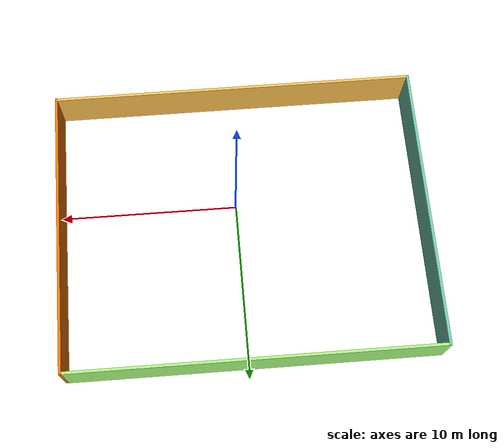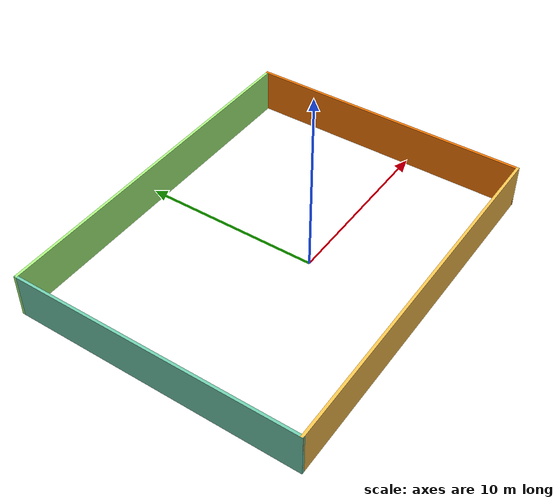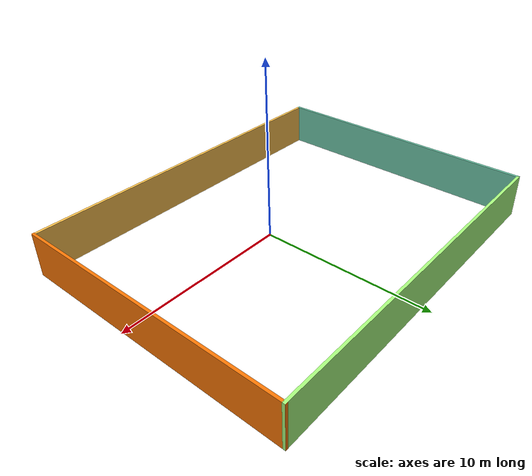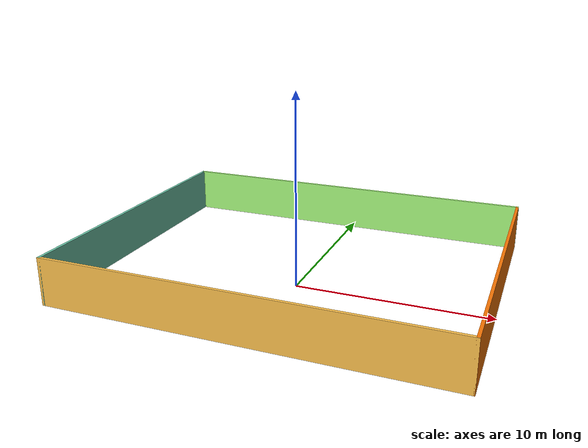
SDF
<?xml version='1.0'?>
<sdf version='1.6'>
  <model name='square_building'>
    <pose frame=''>-0.321975 1.48344 0 0 -0 0</pose>
    <link name='Wall_4'>
      <collision name='Wall_4_Collision'>
        <geometry>
          <box>
            <size>16 0.15 2.5</size>
          </box>
        </geometry>
        <pose frame=''>0 0 1.25 0 -0 0</pose>
      </collision>
      <visual name='Wall_4_Visual'>
        <pose frame=''>0 0 1.25 0 -0 0</pose>
        <geometry>
          <box>
            <size>16 0.15 2.5</size>
          </box>
        </geometry>
        <material>
          <script>
            <uri>file://media/materials/scripts/gazebo.material</uri>
            <name>Gazebo/Grey</name>
          </script>
          <ambient>0.435294 0.796078 0.67451 1</ambient>
        </material>
        <meta>
          <layer>0</layer>
        </meta>
      </visual>
      <pose frame=''>-10.175 -0 0 0 -0 -1.5708</pose>
    </link>
    <link name='Wall_5'>
      <collision name='Wall_5_Collision'>
        <geometry>
          <box>
            <size>20.5 0.15 2.5</size>
          </box>
        </geometry>
        <pose frame=''>0 0 1.25 0 -0 0</pose>
      </collision>
      <visual name='Wall_5_Visual'>
        <pose frame=''>0 0 1.25 0 -0 0</pose>
        <geometry>
          <box>
            <size>20.5 0.15 2.5</size>
          </box>
        </geometry>
        <material>
          <script>
            <uri>file://media/materials/scripts/gazebo.material</uri>
            <name>Gazebo/Grey</name>
          </script>
          <ambient>1 0.764706 0.305882 1</ambient>
        </material>
        <meta>
          <layer>0</layer>
        </meta>
      </visual>
      <pose frame=''>-0 -7.925 0 0 -0 0</pose>
    </link>
    <link name='Wall_6'>
      <collision name='Wall_6_Collision'>
        <geometry>
          <box>
            <size>16 0.15 2.5</size>
          </box>
        </geometry>
        <pose frame=''>0 0 1.25 0 -0 0</pose>
      </collision>
      <visual name='Wall_6_Visual'>
        <pose frame=''>0 0 1.25 0 -0 0</pose>
        <geometry>
          <box>
            <size>16 0.15 2.5</size>
          </box>
        </geometry>
        <material>
          <script>
            <uri>file://media/materials/scripts/gazebo.material</uri>
            <name>Gazebo/Grey</name>
          </script>
          <ambient>0.996078 0.47451 0.0196078 1</ambient>
        </material>
        <meta>
          <layer>0</layer>
        </meta>
      </visual>
      <pose frame=''>10.175 -0 0 0 -0 1.5708</pose>
    </link>
    <link name='Wall_7'>
      <collision name='Wall_7_Collision'>
        <geometry>
          <box>
            <size>20.5 0.15 2.5</size>
          </box>
        </geometry>
        <pose frame=''>0 0 1.25 0 -0 0</pose>
      </collision>
      <visual name='Wall_7_Visual'>
        <pose frame=''>0 0 1.25 0 -0 0</pose>
        <geometry>
          <box>
            <size>20.5 0.15 2.5</size>
          </box>
        </geometry>
        <material>
          <script>
            <uri>file://media/materials/scripts/gazebo.material</uri>
            <name>Gazebo/Grey</name>
          </script>
          <ambient>0.666667 1 0.498039 1</ambient>
        </material>
        <meta>
          <layer>0</layer>
        </meta>
      </visual>
      <pose frame=''>-0 7.925 0 0 -0 3.14159</pose>
    </link>
    <static>1</static>
  </model>
</sdf>
